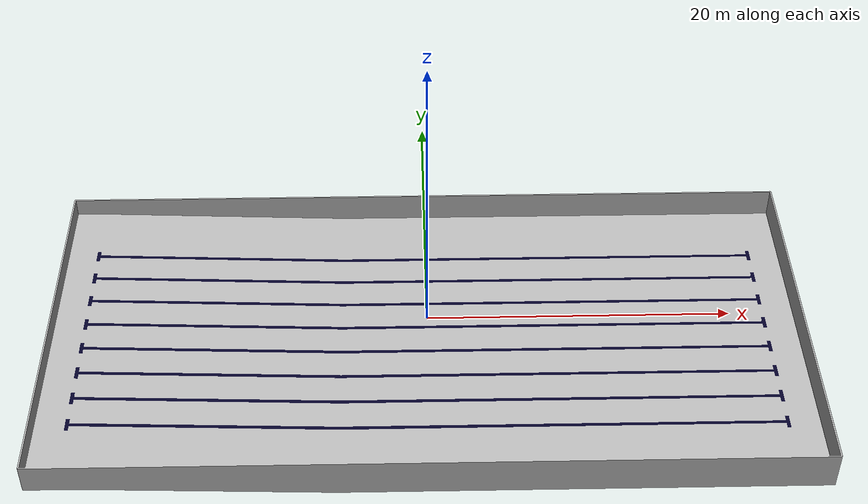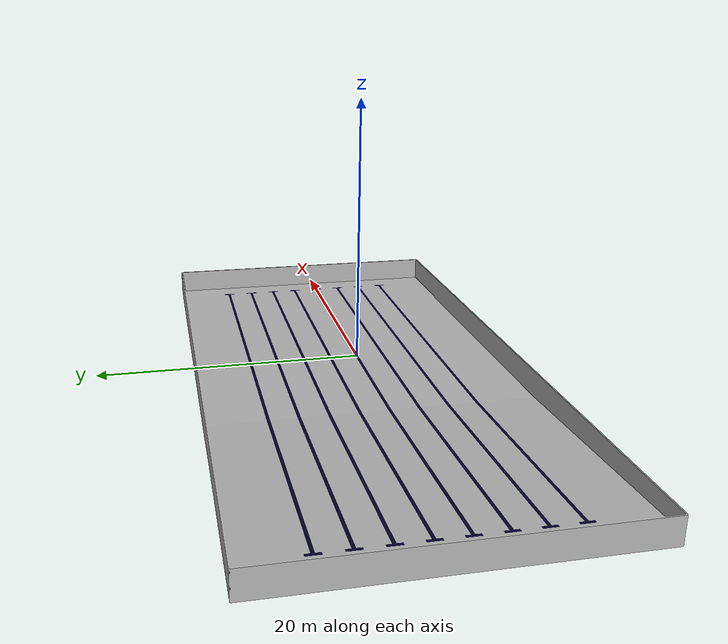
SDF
<?xml version="1.0"?>

<sdf version="1.11">
  <model name="sp_swimming_pool">
    <static>true</static>
    <link name="link">

      <visual name="pool">
        <pose>0 0 0 0 0 0</pose>
        <geometry>
          <mesh>
            <!-- The URI should refer to the 3D mesh. The "model:"
                URI scheme indicates that the we are referencing a Gazebo
                model. -->
            <uri>model://sp_swimming_pool/meshes/sppool.dae</uri>
          </mesh>
        </geometry>
      </visual>

      <collision name="pool_collision">
        <pose>0 0 0 0 0 0</pose>
        <geometry>
          <mesh>
            <uri>model://sp_swimming_pool/meshes/sppool.stl</uri>
          </mesh>
        </geometry>
      </collision>
      <collision name="pool_base">
        <pose>0 0 -2.05 0 0 0</pose>
        <geometry>
          <box>
            <size>50 25 0.1</size>
          </box>
        </geometry>
      </collision>
    </link>
  </model>
</sdf>
